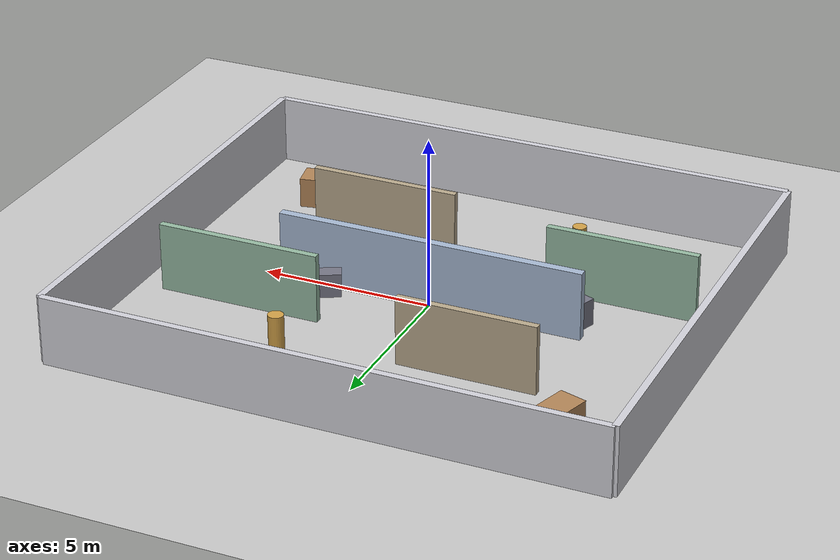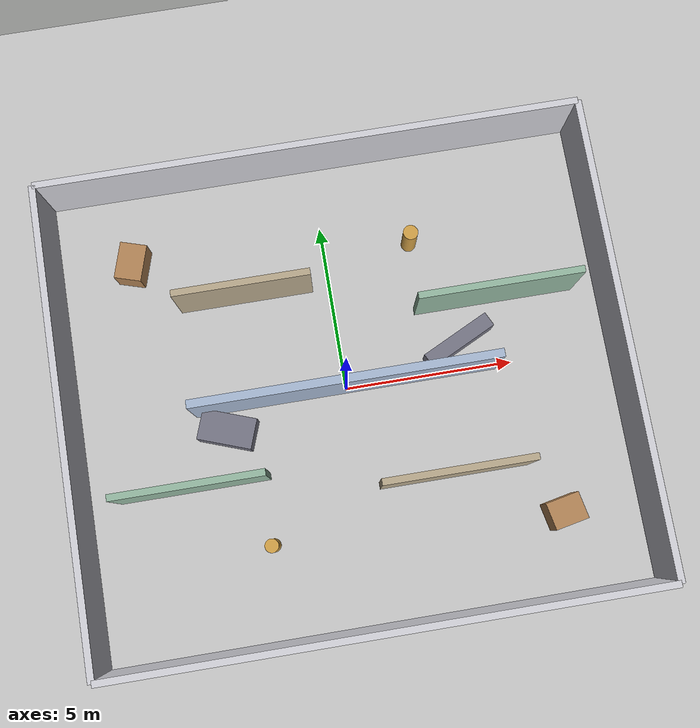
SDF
<?xml version="1.0" ?>
<sdf version="1.9">
  <world name="mapping_arena">
    <gravity>0 0 -9.81</gravity>
    <physics name="1ms" type="ignored">
      <max_step_size>0.001</max_step_size>
      <real_time_factor>1.0</real_time_factor>
    </physics>

    <plugin
      filename="gz-sim-physics-system"
      name="gz::sim::systems::Physics" />
    <plugin
      filename="gz-sim-user-commands-system"
      name="gz::sim::systems::UserCommands" />
    <plugin
      filename="gz-sim-scene-broadcaster-system"
      name="gz::sim::systems::SceneBroadcaster" />
    <plugin
      filename="gz-sim-contact-system"
      name="gz::sim::systems::Contact" />
    <plugin
      filename="gz-sim-imu-system"
      name="gz::sim::systems::Imu" />
    <plugin
      filename="gz-sim-sensors-system"
      name="gz::sim::systems::Sensors">
      <render_engine>ogre2</render_engine>
    </plugin>
    <plugin
      filename="gz-sim-navsat-system"
      name="gz::sim::systems::NavSat" />

    <!-- Match bot_description/config/bot_gnss.yaml world_origin -->
    <spherical_coordinates>
      <surface_model>EARTH_WGS84</surface_model>
      <world_frame_orientation>ENU</world_frame_orientation>
      <latitude_deg>47.478950</latitude_deg>
      <longitude_deg>19.057785</longitude_deg>
      <elevation>0</elevation>
      <heading_deg>0</heading_deg>
    </spherical_coordinates>

    <light name="sun" type="directional">
      <cast_shadows>true</cast_shadows>
      <pose>0 0 12 0 0 0</pose>
      <diffuse>0.8 0.8 0.8 1</diffuse>
      <specular>0.2 0.2 0.2 1</specular>
      <attenuation>
        <range>1000</range>
        <constant>0.9</constant>
        <linear>0.01</linear>
        <quadratic>0.001</quadratic>
      </attenuation>
      <direction>-0.5 0.1 -0.9</direction>
    </light>

    <model name="ground_plane">
      <static>true</static>
      <link name="link">
        <collision name="collision">
          <geometry>
            <plane>
              <normal>0 0 1</normal>
              <size>120 120</size>
            </plane>
          </geometry>
        </collision>
        <visual name="visual">
          <geometry>
            <plane>
              <normal>0 0 1</normal>
              <size>120 120</size>
            </plane>
          </geometry>
          <material>
            <ambient>0.78 0.78 0.78 1</ambient>
            <diffuse>0.78 0.78 0.78 1</diffuse>
          </material>
        </visual>
      </link>
    </model>

    <model name="north_wall">
      <static>true</static>
      <pose>0 7 1 0 0 0</pose>
      <link name="link">
        <collision name="collision">
          <geometry>
            <box>
              <size>16 0.2 2.0</size>
            </box>
          </geometry>
        </collision>
        <visual name="visual">
          <geometry>
            <box>
              <size>16 0.2 2.0</size>
            </box>
          </geometry>
          <material>
            <ambient>0.82 0.82 0.85 1</ambient>
            <diffuse>0.82 0.82 0.85 1</diffuse>
          </material>
        </visual>
      </link>
    </model>

    <model name="south_wall">
      <static>true</static>
      <pose>0 -7 1 0 0 0</pose>
      <link name="link">
        <collision name="collision">
          <geometry>
            <box>
              <size>16 0.2 2.0</size>
            </box>
          </geometry>
        </collision>
        <visual name="visual">
          <geometry>
            <box>
              <size>16 0.2 2.0</size>
            </box>
          </geometry>
          <material>
            <ambient>0.82 0.82 0.85 1</ambient>
            <diffuse>0.82 0.82 0.85 1</diffuse>
          </material>
        </visual>
      </link>
    </model>

    <model name="east_wall">
      <static>true</static>
      <pose>8 0 1 0 0 0</pose>
      <link name="link">
        <collision name="collision">
          <geometry>
            <box>
              <size>0.2 14 2.0</size>
            </box>
          </geometry>
        </collision>
        <visual name="visual">
          <geometry>
            <box>
              <size>0.2 14 2.0</size>
            </box>
          </geometry>
          <material>
            <ambient>0.82 0.82 0.85 1</ambient>
            <diffuse>0.82 0.82 0.85 1</diffuse>
          </material>
        </visual>
      </link>
    </model>

    <model name="west_wall">
      <static>true</static>
      <pose>-8 0 1 0 0 0</pose>
      <link name="link">
        <collision name="collision">
          <geometry>
            <box>
              <size>0.2 14 2.0</size>
            </box>
          </geometry>
        </collision>
        <visual name="visual">
          <geometry>
            <box>
              <size>0.2 14 2.0</size>
            </box>
          </geometry>
          <material>
            <ambient>0.82 0.82 0.85 1</ambient>
            <diffuse>0.82 0.82 0.85 1</diffuse>
          </material>
        </visual>
      </link>
    </model>

    <model name="center_spine">
      <static>true</static>
      <pose>0 0 1 0 0 1.5708</pose>
      <link name="link">
        <collision name="collision">
          <geometry>
            <box>
              <size>0.25 9.0 2.0</size>
            </box>
          </geometry>
        </collision>
        <visual name="visual">
          <geometry>
            <box>
              <size>0.25 9.0 2.0</size>
            </box>
          </geometry>
          <material>
            <ambient>0.65 0.72 0.82 1</ambient>
            <diffuse>0.65 0.72 0.82 1</diffuse>
          </material>
        </visual>
      </link>
    </model>

    <model name="north_cross_wall">
      <static>true</static>
      <pose>-2.5 3.2 1 0 0 0</pose>
      <link name="link">
        <collision name="collision">
          <geometry>
            <box>
              <size>4.0 0.2 2.0</size>
            </box>
          </geometry>
        </collision>
        <visual name="visual">
          <geometry>
            <box>
              <size>4.0 0.2 2.0</size>
            </box>
          </geometry>
          <material>
            <ambient>0.72 0.66 0.55 1</ambient>
            <diffuse>0.72 0.66 0.55 1</diffuse>
          </material>
        </visual>
      </link>
    </model>

    <model name="south_cross_wall">
      <static>true</static>
      <pose>2.7 -3.0 1 0 0 0</pose>
      <link name="link">
        <collision name="collision">
          <geometry>
            <box>
              <size>4.4 0.2 2.0</size>
            </box>
          </geometry>
        </collision>
        <visual name="visual">
          <geometry>
            <box>
              <size>4.4 0.2 2.0</size>
            </box>
          </geometry>
          <material>
            <ambient>0.72 0.66 0.55 1</ambient>
            <diffuse>0.72 0.66 0.55 1</diffuse>
          </material>
        </visual>
      </link>
    </model>

    <model name="east_room_block">
      <static>true</static>
      <pose>4.8 2.0 1 0 0 1.5708</pose>
      <link name="link">
        <collision name="collision">
          <geometry>
            <box>
              <size>0.2 4.8 2.0</size>
            </box>
          </geometry>
        </collision>
        <visual name="visual">
          <geometry>
            <box>
              <size>0.2 4.8 2.0</size>
            </box>
          </geometry>
          <material>
            <ambient>0.58 0.72 0.63 1</ambient>
            <diffuse>0.58 0.72 0.63 1</diffuse>
          </material>
        </visual>
      </link>
    </model>

    <model name="west_room_block">
      <static>true</static>
      <pose>-4.8 -2.2 1 0 0 1.5708</pose>
      <link name="link">
        <collision name="collision">
          <geometry>
            <box>
              <size>0.2 4.4 2.0</size>
            </box>
          </geometry>
        </collision>
        <visual name="visual">
          <geometry>
            <box>
              <size>0.2 4.4 2.0</size>
            </box>
          </geometry>
          <material>
            <ambient>0.58 0.72 0.63 1</ambient>
            <diffuse>0.58 0.72 0.63 1</diffuse>
          </material>
        </visual>
      </link>
    </model>

    <model name="crate_cluster_one">
      <static>true</static>
      <pose>5.6 -4.6 0.45 0 0 0.2</pose>
      <link name="link">
        <collision name="collision">
          <geometry>
            <box>
              <size>1.0 0.8 0.9</size>
            </box>
          </geometry>
        </collision>
        <visual name="visual">
          <geometry>
            <box>
              <size>1.0 0.8 0.9</size>
            </box>
          </geometry>
          <material>
            <ambient>0.7 0.52 0.34 1</ambient>
            <diffuse>0.7 0.52 0.34 1</diffuse>
          </material>
        </visual>
      </link>
    </model>

    <model name="crate_cluster_two">
      <static>true</static>
      <pose>-5.7 4.7 0.4 0 0 -0.3</pose>
      <link name="link">
        <collision name="collision">
          <geometry>
            <box>
              <size>0.8 1.1 0.8</size>
            </box>
          </geometry>
        </collision>
        <visual name="visual">
          <geometry>
            <box>
              <size>0.8 1.1 0.8</size>
            </box>
          </geometry>
          <material>
            <ambient>0.7 0.52 0.34 1</ambient>
            <diffuse>0.7 0.52 0.34 1</diffuse>
          </material>
        </visual>
      </link>
    </model>

    <model name="pillar_alpha">
      <static>true</static>
      <pose>2.6 4.1 0.6 0 0 0</pose>
      <link name="link">
        <collision name="collision">
          <geometry>
            <cylinder>
              <radius>0.22</radius>
              <length>1.2</length>
            </cylinder>
          </geometry>
        </collision>
        <visual name="visual">
          <geometry>
            <cylinder>
              <radius>0.22</radius>
              <length>1.2</length>
            </cylinder>
          </geometry>
          <material>
            <ambient>0.82 0.63 0.28 1</ambient>
            <diffuse>0.82 0.63 0.28 1</diffuse>
          </material>
        </visual>
      </link>
    </model>

    <model name="pillar_beta">
      <static>true</static>
      <pose>-2.8 -4.2 0.55 0 0 0</pose>
      <link name="link">
        <collision name="collision">
          <geometry>
            <cylinder>
              <radius>0.20</radius>
              <length>1.1</length>
            </cylinder>
          </geometry>
        </collision>
        <visual name="visual">
          <geometry>
            <cylinder>
              <radius>0.20</radius>
              <length>1.1</length>
            </cylinder>
          </geometry>
          <material>
            <ambient>0.82 0.63 0.28 1</ambient>
            <diffuse>0.82 0.63 0.28 1</diffuse>
          </material>
        </visual>
      </link>
    </model>

    <model name="long_bench">
      <static>true</static>
      <pose>3.5 0.8 0.35 0 0 0.45</pose>
      <link name="link">
        <collision name="collision">
          <geometry>
            <box>
              <size>2.2 0.45 0.7</size>
            </box>
          </geometry>
        </collision>
        <visual name="visual">
          <geometry>
            <box>
              <size>2.2 0.45 0.7</size>
            </box>
          </geometry>
          <material>
            <ambient>0.46 0.46 0.52 1</ambient>
            <diffuse>0.46 0.46 0.52 1</diffuse>
          </material>
        </visual>
      </link>
    </model>

    <model name="loading_table">
      <static>true</static>
      <pose>-3.6 -0.7 0.4 0 0 -0.35</pose>
      <link name="link">
        <collision name="collision">
          <geometry>
            <box>
              <size>1.6 0.9 0.8</size>
            </box>
          </geometry>
        </collision>
        <visual name="visual">
          <geometry>
            <box>
              <size>1.6 0.9 0.8</size>
            </box>
          </geometry>
          <material>
            <ambient>0.46 0.46 0.52 1</ambient>
            <diffuse>0.46 0.46 0.52 1</diffuse>
          </material>
        </visual>
      </link>
    </model>
  </world>
</sdf>
